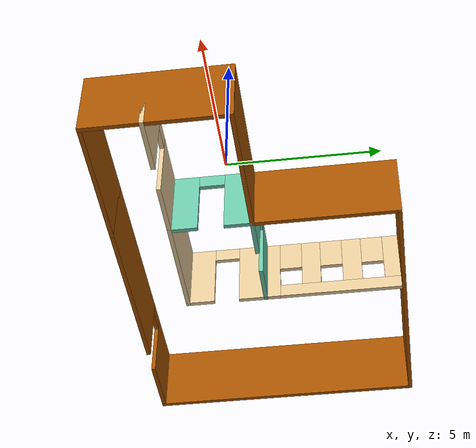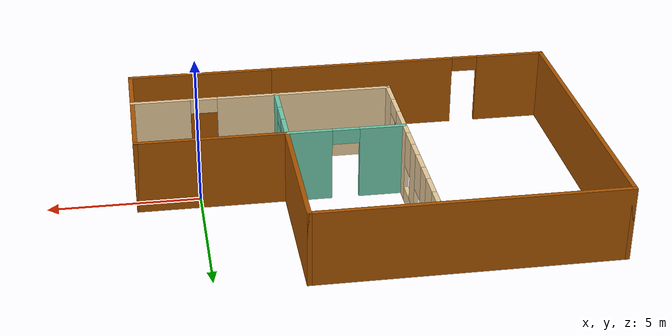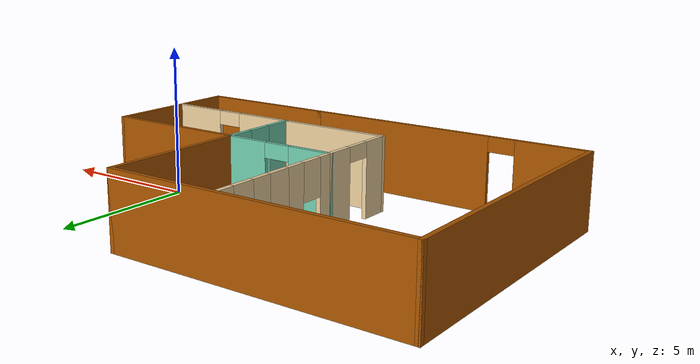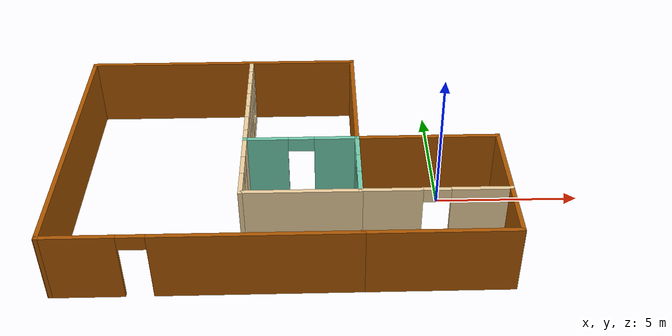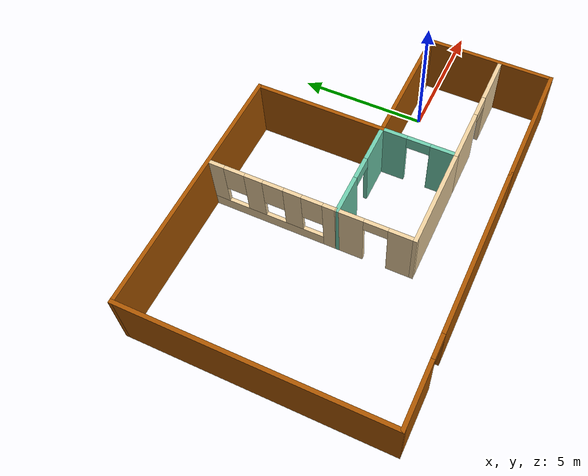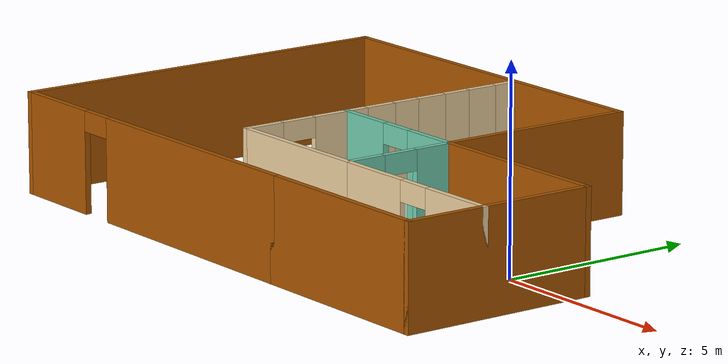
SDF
<?xml version='1.0'?>
<sdf version='1.6'>
  <model name='Building'>
    <pose frame=''>-5.32604 0.565561 0 0 -0 0</pose>
    <link name='Wall_19'>
      <collision name='Wall_19_Collision'>
        <geometry>
          <box>
            <size>10 0.15 2.5</size>
          </box>
        </geometry>
        <pose frame=''>0 0 1.25 0 -0 0</pose>
      </collision>
      <visual name='Wall_19_Visual'>
        <pose frame=''>0 0 1.25 0 -0 0</pose>
        <geometry>
          <box>
            <size>10 0.15 2.5</size>
          </box>
        </geometry>
        <material>
          <script>
            <uri>file://media/materials/scripts/gazebo.material</uri>
            <name>Gazebo/Grey</name>
          </script>
          <ambient>0.666667 0.333333 0 1</ambient>
        </material>
        <meta>
          <layer>0</layer>
        </meta>
      </visual>
      <pose frame=''>-7.35 0 0 0 0 -1.5708</pose>
    </link>
    <link name='Wall_20'>
      <pose frame=''>-2.425 -4.925 0 0 -0 0</pose>
      <visual name='Wall_20_Visual_0'>
        <pose frame=''>-3.77711 0 1.25 0 -0 0</pose>
        <geometry>
          <box>
            <size>2.44579 0.15 2.5</size>
          </box>
        </geometry>
        <material>
          <script>
            <uri>file://media/materials/scripts/gazebo.material</uri>
            <name>Gazebo/Grey</name>
          </script>
          <ambient>0.666667 0.333333 0 1</ambient>
        </material>
        <meta>
          <layer>0</layer>
        </meta>
      </visual>
      <collision name='Wall_20_Collision_0'>
        <geometry>
          <box>
            <size>2.44579 0.15 2.5</size>
          </box>
        </geometry>
        <pose frame=''>-3.77711 0 1.25 0 -0 0</pose>
      </collision>
      <visual name='Wall_20_Visual_1'>
        <pose frame=''>1.67289 0 1.25 0 -0 0</pose>
        <geometry>
          <box>
            <size>6.65421 0.15 2.5</size>
          </box>
        </geometry>
        <material>
          <script>
            <uri>file://media/materials/scripts/gazebo.material</uri>
            <name>Gazebo/Grey</name>
          </script>
          <ambient>0.666667 0.333333 0 1</ambient>
        </material>
        <meta>
          <layer>0</layer>
        </meta>
      </visual>
      <collision name='Wall_20_Collision_1'>
        <geometry>
          <box>
            <size>6.65421 0.15 2.5</size>
          </box>
        </geometry>
        <pose frame=''>1.67289 0 1.25 0 -0 0</pose>
      </collision>
      <visual name='Wall_20_Visual_2'>
        <pose frame=''>-2.10421 0 2.25 0 -0 0</pose>
        <geometry>
          <box>
            <size>0.9 0.15 0.5</size>
          </box>
        </geometry>
        <material>
          <script>
            <uri>file://media/materials/scripts/gazebo.material</uri>
            <name>Gazebo/Grey</name>
          </script>
          <ambient>0.666667 0.333333 0 1</ambient>
        </material>
        <meta>
          <layer>0</layer>
        </meta>
      </visual>
      <collision name='Wall_20_Collision_2'>
        <geometry>
          <box>
            <size>0.9 0.15 0.5</size>
          </box>
        </geometry>
        <pose frame=''>-2.10421 0 2.25 0 -0 0</pose>
      </collision>
    </link>
    <link name='Wall_22'>
      <pose frame=''>0.575 -0.075 0 0 -0 3.14159</pose>
      <visual name='Wall_22_Visual_0'>
        <pose frame=''>-1.22681 0 1.25 0 -0 0</pose>
        <geometry>
          <box>
            <size>1.54637 0.15 2.5</size>
          </box>
        </geometry>
        <material>
          <script>
            <uri>file://media/materials/scripts/gazebo.material</uri>
            <name>Gazebo/Grey</name>
          </script>
          <ambient>0.435294 0.796078 0.67451 1</ambient>
        </material>
        <meta>
          <layer>0</layer>
        </meta>
      </visual>
      <collision name='Wall_22_Collision_0'>
        <geometry>
          <box>
            <size>1.54637 0.15 2.5</size>
          </box>
        </geometry>
        <pose frame=''>-1.22681 0 1.25 0 -0 0</pose>
      </collision>
      <visual name='Wall_22_Visual_1'>
        <pose frame=''>1.22319 0 1.25 0 -0 0</pose>
        <geometry>
          <box>
            <size>1.55363 0.15 2.5</size>
          </box>
        </geometry>
        <material>
          <script>
            <uri>file://media/materials/scripts/gazebo.material</uri>
            <name>Gazebo/Grey</name>
          </script>
          <ambient>0.435294 0.796078 0.67451 1</ambient>
        </material>
        <meta>
          <layer>0</layer>
        </meta>
      </visual>
      <collision name='Wall_22_Collision_1'>
        <geometry>
          <box>
            <size>1.55363 0.15 2.5</size>
          </box>
        </geometry>
        <pose frame=''>1.22319 0 1.25 0 -0 0</pose>
      </collision>
      <visual name='Wall_22_Visual_2'>
        <pose frame=''>-0.003626 0 2.25 0 -0 0</pose>
        <geometry>
          <box>
            <size>0.9 0.15 0.5</size>
          </box>
        </geometry>
        <material>
          <script>
            <uri>file://media/materials/scripts/gazebo.material</uri>
            <name>Gazebo/Grey</name>
          </script>
          <ambient>0.435294 0.796078 0.67451 1</ambient>
        </material>
        <meta>
          <layer>0</layer>
        </meta>
      </visual>
      <collision name='Wall_22_Collision_2'>
        <geometry>
          <box>
            <size>0.9 0.15 0.5</size>
          </box>
        </geometry>
        <pose frame=''>-0.003626 0 2.25 0 -0 0</pose>
      </collision>
    </link>
    <link name='Wall_25'>
      <collision name='Wall_25_Collision'>
        <geometry>
          <box>
            <size>10 0.15 2.5</size>
          </box>
        </geometry>
        <pose frame=''>0 0 1.25 0 -0 0</pose>
      </collision>
      <visual name='Wall_25_Visual'>
        <pose frame=''>0 0 1.25 0 -0 0</pose>
        <geometry>
          <box>
            <size>10 0.15 2.5</size>
          </box>
        </geometry>
        <material>
          <script>
            <uri>file://media/materials/scripts/gazebo.material</uri>
            <name>Gazebo/Grey</name>
          </script>
          <ambient>0.666667 0.333333 0 1</ambient>
        </material>
        <meta>
          <layer>0</layer>
        </meta>
      </visual>
      <pose frame=''>-2.425 4.925 0 0 -0 0</pose>
    </link>
    <link name='Wall_26'>
      <collision name='Wall_26_Collision'>
        <geometry>
          <box>
            <size>5.15 0.15 2.5</size>
          </box>
        </geometry>
        <pose frame=''>0 0 1.25 0 -0 0</pose>
      </collision>
      <visual name='Wall_26_Visual'>
        <pose frame=''>0 0 1.25 0 -0 0</pose>
        <geometry>
          <box>
            <size>5.15 0.15 2.5</size>
          </box>
        </geometry>
        <material>
          <script>
            <uri>file://media/materials/scripts/gazebo.material</uri>
            <name>Gazebo/Grey</name>
          </script>
          <ambient>0.666667 0.333333 0 1</ambient>
        </material>
        <meta>
          <layer>0</layer>
        </meta>
      </visual>
      <pose frame=''>2.5 2.425 0 0 0 -1.5708</pose>
    </link>
    <link name='Wall_28'>
      <pose frame=''>-1.35 2.35 0 0 -0 1.5708</pose>
      <visual name='Wall_28_Visual_0'>
        <pose frame=''>-2.19175 0 1.25 0 -0 0</pose>
        <geometry>
          <box>
            <size>0.616494 0.15 2.5</size>
          </box>
        </geometry>
        <material>
          <script>
            <uri>file://media/materials/scripts/gazebo.material</uri>
            <name>Gazebo/Grey</name>
          </script>
          <ambient>0.921569 0.807843 0.615686 1</ambient>
        </material>
        <meta>
          <layer>0</layer>
        </meta>
      </visual>
      <collision name='Wall_28_Collision_0'>
        <geometry>
          <box>
            <size>0.616494 0.15 2.5</size>
          </box>
        </geometry>
        <pose frame=''>-2.19175 0 1.25 0 -0 0</pose>
      </collision>
      <visual name='Wall_28_Visual_1'>
        <pose frame=''>0.308247 0 0.25 0 -0 0</pose>
        <geometry>
          <box>
            <size>4.38351 0.15 0.5</size>
          </box>
        </geometry>
        <material>
          <script>
            <uri>file://media/materials/scripts/gazebo.material</uri>
            <name>Gazebo/Grey</name>
          </script>
          <ambient>0.921569 0.807843 0.615686 1</ambient>
        </material>
        <meta>
          <layer>0</layer>
        </meta>
      </visual>
      <collision name='Wall_28_Collision_1'>
        <geometry>
          <box>
            <size>4.38351 0.15 0.5</size>
          </box>
        </geometry>
        <pose frame=''>0.308247 0 0.25 0 -0 0</pose>
      </collision>
      <visual name='Wall_28_Visual_2'>
        <pose frame=''>-0.737291 0 1.5 0 -0 0</pose>
        <geometry>
          <box>
            <size>0.692431 0.15 2</size>
          </box>
        </geometry>
        <material>
          <script>
            <uri>file://media/materials/scripts/gazebo.material</uri>
            <name>Gazebo/Grey</name>
          </script>
          <ambient>0.921569 0.807843 0.615686 1</ambient>
        </material>
        <meta>
          <layer>0</layer>
        </meta>
      </visual>
      <collision name='Wall_28_Collision_2'>
        <geometry>
          <box>
            <size>0.692431 0.15 2</size>
          </box>
        </geometry>
        <pose frame=''>-0.737291 0 1.5 0 -0 0</pose>
      </collision>
      <visual name='Wall_28_Visual_3'>
        <pose frame=''>0.763619 0 1.5 0 -0 0</pose>
        <geometry>
          <box>
            <size>0.70939 0.15 2</size>
          </box>
        </geometry>
        <material>
          <script>
            <uri>file://media/materials/scripts/gazebo.material</uri>
            <name>Gazebo/Grey</name>
          </script>
          <ambient>0.921569 0.807843 0.615686 1</ambient>
        </material>
        <meta>
          <layer>0</layer>
        </meta>
      </visual>
      <collision name='Wall_28_Collision_3'>
        <geometry>
          <box>
            <size>0.70939 0.15 2</size>
          </box>
        </geometry>
        <pose frame=''>0.763619 0 1.5 0 -0 0</pose>
      </collision>
      <visual name='Wall_28_Visual_4'>
        <pose frame=''>2.20916 0 1.5 0 -0 0</pose>
        <geometry>
          <box>
            <size>0.581686 0.15 2</size>
          </box>
        </geometry>
        <material>
          <script>
            <uri>file://media/materials/scripts/gazebo.material</uri>
            <name>Gazebo/Grey</name>
          </script>
          <ambient>0.921569 0.807843 0.615686 1</ambient>
        </material>
        <meta>
          <layer>0</layer>
        </meta>
      </visual>
      <collision name='Wall_28_Collision_4'>
        <geometry>
          <box>
            <size>0.581686 0.15 2</size>
          </box>
        </geometry>
        <pose frame=''>2.20916 0 1.5 0 -0 0</pose>
      </collision>
      <visual name='Wall_28_Visual_5'>
        <pose frame=''>-1.48351 0 1.9 0 -0 0</pose>
        <geometry>
          <box>
            <size>0.8 0.15 1.2</size>
          </box>
        </geometry>
        <material>
          <script>
            <uri>file://media/materials/scripts/gazebo.material</uri>
            <name>Gazebo/Grey</name>
          </script>
          <ambient>0.921569 0.807843 0.615686 1</ambient>
        </material>
        <meta>
          <layer>0</layer>
        </meta>
      </visual>
      <collision name='Wall_28_Collision_5'>
        <geometry>
          <box>
            <size>0.8 0.15 1.2</size>
          </box>
        </geometry>
        <pose frame=''>-1.48351 0 1.9 0 -0 0</pose>
      </collision>
      <visual name='Wall_28_Visual_6'>
        <pose frame=''>0.008924 0 1.9 0 -0 0</pose>
        <geometry>
          <box>
            <size>0.8 0.15 1.2</size>
          </box>
        </geometry>
        <material>
          <script>
            <uri>file://media/materials/scripts/gazebo.material</uri>
            <name>Gazebo/Grey</name>
          </script>
          <ambient>0.921569 0.807843 0.615686 1</ambient>
        </material>
        <meta>
          <layer>0</layer>
        </meta>
      </visual>
      <collision name='Wall_28_Collision_6'>
        <geometry>
          <box>
            <size>0.8 0.15 1.2</size>
          </box>
        </geometry>
        <pose frame=''>0.008924 0 1.9 0 -0 0</pose>
      </collision>
      <visual name='Wall_28_Visual_7'>
        <pose frame=''>1.51831 0 1.9 0 -0 0</pose>
        <geometry>
          <box>
            <size>0.8 0.15 1.2</size>
          </box>
        </geometry>
        <material>
          <script>
            <uri>file://media/materials/scripts/gazebo.material</uri>
            <name>Gazebo/Grey</name>
          </script>
          <ambient>0.921569 0.807843 0.615686 1</ambient>
        </material>
        <meta>
          <layer>0</layer>
        </meta>
      </visual>
      <collision name='Wall_28_Collision_7'>
        <geometry>
          <box>
            <size>0.8 0.15 1.2</size>
          </box>
        </geometry>
        <pose frame=''>1.51831 0 1.9 0 -0 0</pose>
      </collision>
    </link>
    <link name='Wall_30'>
      <collision name='Wall_30_Collision'>
        <geometry>
          <box>
            <size>5 0.15 2.5</size>
          </box>
        </geometry>
        <pose frame=''>0 0 1.25 0 -0 0</pose>
      </collision>
      <visual name='Wall_30_Visual'>
        <pose frame=''>0 0 1.25 0 -0 0</pose>
        <geometry>
          <box>
            <size>5 0.15 2.5</size>
          </box>
        </geometry>
        <material>
          <script>
            <uri>file://media/materials/scripts/gazebo.material</uri>
            <name>Gazebo/Grey</name>
          </script>
          <ambient>0.666667 0.333333 0 1</ambient>
        </material>
        <meta>
          <layer>0</layer>
        </meta>
      </visual>
      <pose frame=''>4.925 -0.075 0 0 -0 0</pose>
    </link>
    <link name='Wall_32'>
      <collision name='Wall_32_Collision'>
        <geometry>
          <box>
            <size>5 0.15 2.5</size>
          </box>
        </geometry>
        <pose frame=''>0 0 1.25 0 -0 0</pose>
      </collision>
      <visual name='Wall_32_Visual'>
        <pose frame=''>0 0 1.25 0 -0 0</pose>
        <geometry>
          <box>
            <size>5 0.15 2.5</size>
          </box>
        </geometry>
        <material>
          <script>
            <uri>file://media/materials/scripts/gazebo.material</uri>
            <name>Gazebo/Grey</name>
          </script>
          <ambient>0.666667 0.333333 0 1</ambient>
        </material>
        <meta>
          <layer>0</layer>
        </meta>
      </visual>
      <pose frame=''>4.925 -4.925 0 0 -0 0</pose>
    </link>
    <link name='Wall_33'>
      <collision name='Wall_33_Collision'>
        <geometry>
          <box>
            <size>5 0.15 2.5</size>
          </box>
        </geometry>
        <pose frame=''>0 0 1.25 0 -0 0</pose>
      </collision>
      <visual name='Wall_33_Visual'>
        <pose frame=''>0 0 1.25 0 -0 0</pose>
        <geometry>
          <box>
            <size>5 0.15 2.5</size>
          </box>
        </geometry>
        <material>
          <script>
            <uri>file://media/materials/scripts/gazebo.material</uri>
            <name>Gazebo/Grey</name>
          </script>
          <ambient>0.666667 0.333333 0 1</ambient>
        </material>
        <meta>
          <layer>0</layer>
        </meta>
      </visual>
      <pose frame=''>7.35 -2.5 0 0 -0 1.5708</pose>
    </link>
    <link name='Wall_39'>
      <pose frame=''>2.5 -1.5 0 0 0 -1.5708</pose>
      <visual name='Wall_39_Visual_0'>
        <pose frame=''>-0.975473 0 1.25 0 -0 0</pose>
        <geometry>
          <box>
            <size>1.04905 0.15 2.5</size>
          </box>
        </geometry>
        <material>
          <script>
            <uri>file://media/materials/scripts/gazebo.material</uri>
            <name>Gazebo/Grey</name>
          </script>
          <ambient>0.435294 0.796078 0.67451 1</ambient>
        </material>
        <meta>
          <layer>0</layer>
        </meta>
      </visual>
      <collision name='Wall_39_Collision_0'>
        <geometry>
          <box>
            <size>1.04905 0.15 2.5</size>
          </box>
        </geometry>
        <pose frame=''>-0.975473 0 1.25 0 -0 0</pose>
      </collision>
      <visual name='Wall_39_Visual_1'>
        <pose frame=''>0.974527 0 1.25 0 -0 0</pose>
        <geometry>
          <box>
            <size>1.05095 0.15 2.5</size>
          </box>
        </geometry>
        <material>
          <script>
            <uri>file://media/materials/scripts/gazebo.material</uri>
            <name>Gazebo/Grey</name>
          </script>
          <ambient>0.435294 0.796078 0.67451 1</ambient>
        </material>
        <meta>
          <layer>0</layer>
        </meta>
      </visual>
      <collision name='Wall_39_Collision_1'>
        <geometry>
          <box>
            <size>1.05095 0.15 2.5</size>
          </box>
        </geometry>
        <pose frame=''>0.974527 0 1.25 0 -0 0</pose>
      </collision>
      <visual name='Wall_39_Visual_2'>
        <pose frame=''>-0.000946 0 2.25 0 -0 0</pose>
        <geometry>
          <box>
            <size>0.9 0.15 0.5</size>
          </box>
        </geometry>
        <material>
          <script>
            <uri>file://media/materials/scripts/gazebo.material</uri>
            <name>Gazebo/Grey</name>
          </script>
          <ambient>0.435294 0.796078 0.67451 1</ambient>
        </material>
        <meta>
          <layer>0</layer>
        </meta>
      </visual>
      <collision name='Wall_39_Collision_2'>
        <geometry>
          <box>
            <size>0.9 0.15 0.5</size>
          </box>
        </geometry>
        <pose frame=''>-0.000946 0 2.25 0 -0 0</pose>
      </collision>
    </link>
    <link name='Wall_40'>
      <pose frame=''>4.925 -2.925 0 0 -0 0</pose>
      <visual name='Wall_40_Visual_0'>
        <pose frame=''>-1.45777 0 1.25 0 -0 0</pose>
        <geometry>
          <box>
            <size>2.08446 0.15 2.5</size>
          </box>
        </geometry>
        <material>
          <script>
            <uri>file://media/materials/scripts/gazebo.material</uri>
            <name>Gazebo/Grey</name>
          </script>
          <ambient>0.921569 0.807843 0.615686 1</ambient>
        </material>
        <meta>
          <layer>0</layer>
        </meta>
      </visual>
      <collision name='Wall_40_Collision_0'>
        <geometry>
          <box>
            <size>2.08446 0.15 2.5</size>
          </box>
        </geometry>
        <pose frame=''>-1.45777 0 1.25 0 -0 0</pose>
      </collision>
      <visual name='Wall_40_Visual_1'>
        <pose frame=''>1.49223 0 1.25 0 -0 0</pose>
        <geometry>
          <box>
            <size>2.01554 0.15 2.5</size>
          </box>
        </geometry>
        <material>
          <script>
            <uri>file://media/materials/scripts/gazebo.material</uri>
            <name>Gazebo/Grey</name>
          </script>
          <ambient>0.921569 0.807843 0.615686 1</ambient>
        </material>
        <meta>
          <layer>0</layer>
        </meta>
      </visual>
      <collision name='Wall_40_Collision_1'>
        <geometry>
          <box>
            <size>2.01554 0.15 2.5</size>
          </box>
        </geometry>
        <pose frame=''>1.49223 0 1.25 0 -0 0</pose>
      </collision>
      <visual name='Wall_40_Visual_2'>
        <pose frame=''>0.034462 0 2.25 0 -0 0</pose>
        <geometry>
          <box>
            <size>0.9 0.15 0.5</size>
          </box>
        </geometry>
        <material>
          <script>
            <uri>file://media/materials/scripts/gazebo.material</uri>
            <name>Gazebo/Grey</name>
          </script>
          <ambient>0.921569 0.807843 0.615686 1</ambient>
        </material>
        <meta>
          <layer>0</layer>
        </meta>
      </visual>
      <collision name='Wall_40_Collision_2'>
        <geometry>
          <box>
            <size>0.9 0.15 0.5</size>
          </box>
        </geometry>
        <pose frame=''>0.034462 0 2.25 0 -0 0</pose>
      </collision>
    </link>
    <link name='Wall_43'>
      <collision name='Wall_43_Collision'>
        <geometry>
          <box>
            <size>4 0.15 2.5</size>
          </box>
        </geometry>
        <pose frame=''>0 0 1.25 0 -0 0</pose>
      </collision>
      <visual name='Wall_43_Visual'>
        <pose frame=''>0 0 1.25 0 -0 0</pose>
        <geometry>
          <box>
            <size>4 0.15 2.5</size>
          </box>
        </geometry>
        <material>
          <script>
            <uri>file://media/materials/scripts/gazebo.material</uri>
            <name>Gazebo/Grey</name>
          </script>
          <ambient>0.921569 0.807843 0.615686 1</ambient>
        </material>
        <meta>
          <layer>0</layer>
        </meta>
      </visual>
      <pose frame=''>0.575 -2.925 0 0 -0 3.14159</pose>
    </link>
    <link name='Wall_44'>
      <pose frame=''>-1.35 -1.5 0 0 -0 1.5708</pose>
      <visual name='Wall_44_Visual_0'>
        <pose frame=''>-0.978456 0 1.25 0 -0 0</pose>
        <geometry>
          <box>
            <size>1.04309 0.15 2.5</size>
          </box>
        </geometry>
        <material>
          <script>
            <uri>file://media/materials/scripts/gazebo.material</uri>
            <name>Gazebo/Grey</name>
          </script>
          <ambient>0.921569 0.807843 0.615686 1</ambient>
        </material>
        <meta>
          <layer>0</layer>
        </meta>
      </visual>
      <collision name='Wall_44_Collision_0'>
        <geometry>
          <box>
            <size>1.04309 0.15 2.5</size>
          </box>
        </geometry>
        <pose frame=''>-0.978456 0 1.25 0 -0 0</pose>
      </collision>
      <visual name='Wall_44_Visual_1'>
        <pose frame=''>0.971544 0 1.25 0 -0 0</pose>
        <geometry>
          <box>
            <size>1.05691 0.15 2.5</size>
          </box>
        </geometry>
        <material>
          <script>
            <uri>file://media/materials/scripts/gazebo.material</uri>
            <name>Gazebo/Grey</name>
          </script>
          <ambient>0.921569 0.807843 0.615686 1</ambient>
        </material>
        <meta>
          <layer>0</layer>
        </meta>
      </visual>
      <collision name='Wall_44_Collision_1'>
        <geometry>
          <box>
            <size>1.05691 0.15 2.5</size>
          </box>
        </geometry>
        <pose frame=''>0.971544 0 1.25 0 -0 0</pose>
      </collision>
      <visual name='Wall_44_Visual_2'>
        <pose frame=''>-0.006911 0 2.25 0 -0 0</pose>
        <geometry>
          <box>
            <size>0.9 0.15 0.5</size>
          </box>
        </geometry>
        <material>
          <script>
            <uri>file://media/materials/scripts/gazebo.material</uri>
            <name>Gazebo/Grey</name>
          </script>
          <ambient>0.921569 0.807843 0.615686 1</ambient>
        </material>
        <meta>
          <layer>0</layer>
        </meta>
      </visual>
      <collision name='Wall_44_Collision_2'>
        <geometry>
          <box>
            <size>0.9 0.15 0.5</size>
          </box>
        </geometry>
        <pose frame=''>-0.006911 0 2.25 0 -0 0</pose>
      </collision>
    </link>
    <static>1</static>
  </model>
</sdf>
